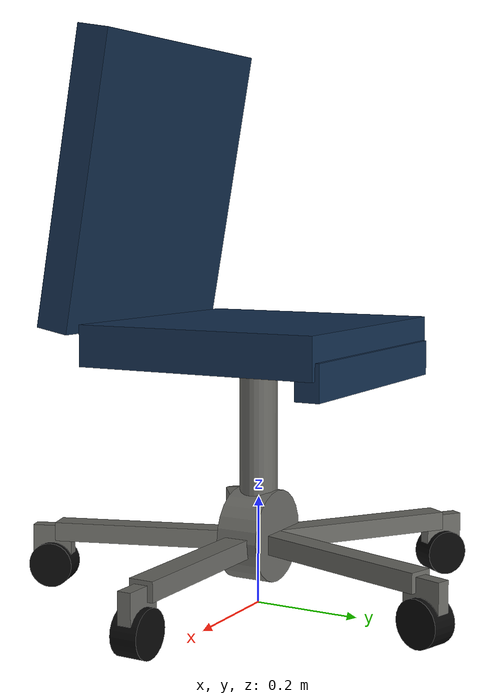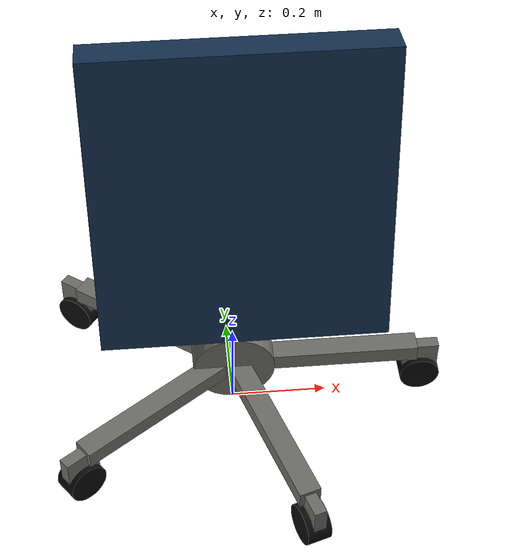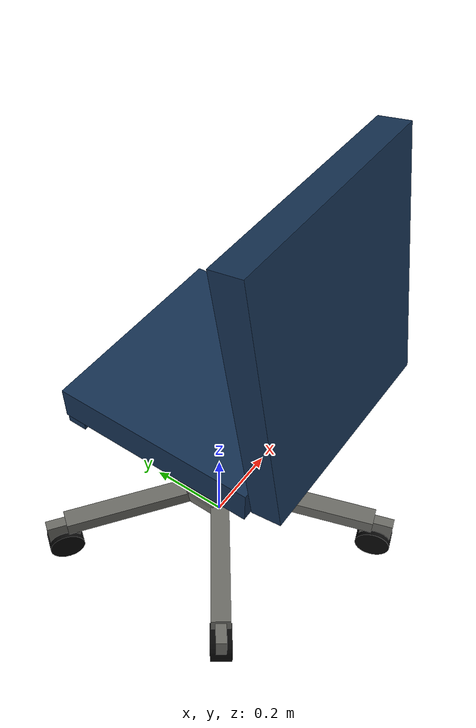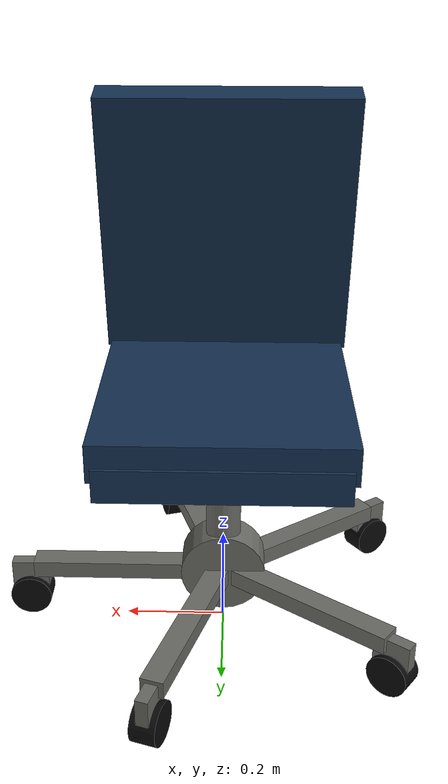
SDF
<?xml version="1.0"?>
<sdf version="1.9">
  <model name="rolling_chair">
    <static>true</static>
    <link name="seat">
      <pose>0 0 0.49 0 0 0</pose>
      <collision name="collision">
        <geometry><box><size>0.48 0.46 0.075</size></box></geometry>
      </collision>
      <visual name="visual">
        <geometry><box><size>0.48 0.46 0.075</size></box></geometry>
          <material>
            <ambient>0.08 0.19 0.32 1</ambient>
            <diffuse>0.08 0.19 0.32 1</diffuse>
          </material>
      </visual>
    </link>
    <link name="front_lip">
      <pose>0 0.215 0.45 0 0 0</pose>
      <collision name="collision">
        <geometry><box><size>0.46 0.045 0.065</size></box></geometry>
      </collision>
      <visual name="visual">
        <geometry><box><size>0.46 0.045 0.065</size></box></geometry>
          <material>
            <ambient>0.08 0.19 0.32 1</ambient>
            <diffuse>0.08 0.19 0.32 1</diffuse>
          </material>
      </visual>
    </link>
    <link name="backrest">
      <pose>0 -0.235 0.78 -0.18 0 0</pose>
      <collision name="collision">
        <geometry><box><size>0.50 0.065 0.54</size></box></geometry>
      </collision>
      <visual name="visual">
        <geometry><box><size>0.50 0.065 0.54</size></box></geometry>
          <material>
            <ambient>0.08 0.19 0.32 1</ambient>
            <diffuse>0.08 0.19 0.32 1</diffuse>
          </material>
      </visual>
    </link>
    <link name="gas_lift">
      <pose>0 0 0.30 0 0 0</pose>
      <collision name="collision">
        <geometry><cylinder><radius>0.035</radius><length>0.34</length></cylinder></geometry>
      </collision>
      <visual name="visual">
        <geometry><cylinder><radius>0.035</radius><length>0.34</length></cylinder></geometry>
          <material>
            <ambient>0.42 0.42 0.4 1</ambient>
            <diffuse>0.42 0.42 0.4 1</diffuse>
          </material>
      </visual>
    </link>
    <link name="base_hub">
      <pose>0 0 0.13 1.5708 0 0</pose>
      <collision name="collision">
        <geometry><cylinder><radius>0.085</radius><length>0.08</length></cylinder></geometry>
      </collision>
      <visual name="visual">
        <geometry><cylinder><radius>0.085</radius><length>0.08</length></cylinder></geometry>
          <material>
            <ambient>0.42 0.42 0.4 1</ambient>
            <diffuse>0.42 0.42 0.4 1</diffuse>
          </material>
      </visual>
    </link>
    <link name="base_spoke_1">
      <pose>0.2100 0.0000 0.12 0 0 0.0000</pose>
      <collision name="collision">
        <geometry><box><size>0.36 0.045 0.035</size></box></geometry>
      </collision>
      <visual name="visual">
        <geometry><box><size>0.36 0.045 0.035</size></box></geometry>
          <material>
            <ambient>0.42 0.42 0.4 1</ambient>
            <diffuse>0.42 0.42 0.4 1</diffuse>
          </material>
      </visual>
    </link>
    <link name="caster_wheel_1">
      <pose>0.4000 0.0000 0.055 1.5708 0 0.0000</pose>
      <collision name="collision">
        <geometry><cylinder><radius>0.042</radius><length>0.050</length></cylinder></geometry>
      </collision>
      <visual name="visual">
        <geometry><cylinder><radius>0.042</radius><length>0.050</length></cylinder></geometry>
          <material>
            <ambient>0.035 0.035 0.035 1</ambient>
            <diffuse>0.035 0.035 0.035 1</diffuse>
          </material>
      </visual>
    </link>
    <link name="caster_fork_1">
      <pose>0.4000 0.0000 0.102 0 0 0.0000</pose>
      <collision name="collision">
        <geometry><box><size>0.075 0.025 0.055</size></box></geometry>
      </collision>
      <visual name="visual">
        <geometry><box><size>0.075 0.025 0.055</size></box></geometry>
          <material>
            <ambient>0.42 0.42 0.4 1</ambient>
            <diffuse>0.42 0.42 0.4 1</diffuse>
          </material>
      </visual>
    </link>
    <link name="base_spoke_2">
      <pose>0.0649 0.1997 0.12 0 0 1.2566</pose>
      <collision name="collision">
        <geometry><box><size>0.36 0.045 0.035</size></box></geometry>
      </collision>
      <visual name="visual">
        <geometry><box><size>0.36 0.045 0.035</size></box></geometry>
          <material>
            <ambient>0.42 0.42 0.4 1</ambient>
            <diffuse>0.42 0.42 0.4 1</diffuse>
          </material>
      </visual>
    </link>
    <link name="caster_wheel_2">
      <pose>0.1236 0.3804 0.055 1.5708 0 1.2566</pose>
      <collision name="collision">
        <geometry><cylinder><radius>0.042</radius><length>0.050</length></cylinder></geometry>
      </collision>
      <visual name="visual">
        <geometry><cylinder><radius>0.042</radius><length>0.050</length></cylinder></geometry>
          <material>
            <ambient>0.035 0.035 0.035 1</ambient>
            <diffuse>0.035 0.035 0.035 1</diffuse>
          </material>
      </visual>
    </link>
    <link name="caster_fork_2">
      <pose>0.1236 0.3804 0.102 0 0 1.2566</pose>
      <collision name="collision">
        <geometry><box><size>0.075 0.025 0.055</size></box></geometry>
      </collision>
      <visual name="visual">
        <geometry><box><size>0.075 0.025 0.055</size></box></geometry>
          <material>
            <ambient>0.42 0.42 0.4 1</ambient>
            <diffuse>0.42 0.42 0.4 1</diffuse>
          </material>
      </visual>
    </link>
    <link name="base_spoke_3">
      <pose>-0.1699 0.1234 0.12 0 0 2.5133</pose>
      <collision name="collision">
        <geometry><box><size>0.36 0.045 0.035</size></box></geometry>
      </collision>
      <visual name="visual">
        <geometry><box><size>0.36 0.045 0.035</size></box></geometry>
          <material>
            <ambient>0.42 0.42 0.4 1</ambient>
            <diffuse>0.42 0.42 0.4 1</diffuse>
          </material>
      </visual>
    </link>
    <link name="caster_wheel_3">
      <pose>-0.3236 0.2351 0.055 1.5708 0 2.5133</pose>
      <collision name="collision">
        <geometry><cylinder><radius>0.042</radius><length>0.050</length></cylinder></geometry>
      </collision>
      <visual name="visual">
        <geometry><cylinder><radius>0.042</radius><length>0.050</length></cylinder></geometry>
          <material>
            <ambient>0.035 0.035 0.035 1</ambient>
            <diffuse>0.035 0.035 0.035 1</diffuse>
          </material>
      </visual>
    </link>
    <link name="caster_fork_3">
      <pose>-0.3236 0.2351 0.102 0 0 2.5133</pose>
      <collision name="collision">
        <geometry><box><size>0.075 0.025 0.055</size></box></geometry>
      </collision>
      <visual name="visual">
        <geometry><box><size>0.075 0.025 0.055</size></box></geometry>
          <material>
            <ambient>0.42 0.42 0.4 1</ambient>
            <diffuse>0.42 0.42 0.4 1</diffuse>
          </material>
      </visual>
    </link>
    <link name="base_spoke_4">
      <pose>-0.1699 -0.1234 0.12 0 0 3.7699</pose>
      <collision name="collision">
        <geometry><box><size>0.36 0.045 0.035</size></box></geometry>
      </collision>
      <visual name="visual">
        <geometry><box><size>0.36 0.045 0.035</size></box></geometry>
          <material>
            <ambient>0.42 0.42 0.4 1</ambient>
            <diffuse>0.42 0.42 0.4 1</diffuse>
          </material>
      </visual>
    </link>
    <link name="caster_wheel_4">
      <pose>-0.3236 -0.2351 0.055 1.5708 0 3.7699</pose>
      <collision name="collision">
        <geometry><cylinder><radius>0.042</radius><length>0.050</length></cylinder></geometry>
      </collision>
      <visual name="visual">
        <geometry><cylinder><radius>0.042</radius><length>0.050</length></cylinder></geometry>
          <material>
            <ambient>0.035 0.035 0.035 1</ambient>
            <diffuse>0.035 0.035 0.035 1</diffuse>
          </material>
      </visual>
    </link>
    <link name="caster_fork_4">
      <pose>-0.3236 -0.2351 0.102 0 0 3.7699</pose>
      <collision name="collision">
        <geometry><box><size>0.075 0.025 0.055</size></box></geometry>
      </collision>
      <visual name="visual">
        <geometry><box><size>0.075 0.025 0.055</size></box></geometry>
          <material>
            <ambient>0.42 0.42 0.4 1</ambient>
            <diffuse>0.42 0.42 0.4 1</diffuse>
          </material>
      </visual>
    </link>
    <link name="base_spoke_5">
      <pose>0.0649 -0.1997 0.12 0 0 5.0265</pose>
      <collision name="collision">
        <geometry><box><size>0.36 0.045 0.035</size></box></geometry>
      </collision>
      <visual name="visual">
        <geometry><box><size>0.36 0.045 0.035</size></box></geometry>
          <material>
            <ambient>0.42 0.42 0.4 1</ambient>
            <diffuse>0.42 0.42 0.4 1</diffuse>
          </material>
      </visual>
    </link>
    <link name="caster_wheel_5">
      <pose>0.1236 -0.3804 0.055 1.5708 0 5.0265</pose>
      <collision name="collision">
        <geometry><cylinder><radius>0.042</radius><length>0.050</length></cylinder></geometry>
      </collision>
      <visual name="visual">
        <geometry><cylinder><radius>0.042</radius><length>0.050</length></cylinder></geometry>
          <material>
            <ambient>0.035 0.035 0.035 1</ambient>
            <diffuse>0.035 0.035 0.035 1</diffuse>
          </material>
      </visual>
    </link>
    <link name="caster_fork_5">
      <pose>0.1236 -0.3804 0.102 0 0 5.0265</pose>
      <collision name="collision">
        <geometry><box><size>0.075 0.025 0.055</size></box></geometry>
      </collision>
      <visual name="visual">
        <geometry><box><size>0.075 0.025 0.055</size></box></geometry>
          <material>
            <ambient>0.42 0.42 0.4 1</ambient>
            <diffuse>0.42 0.42 0.4 1</diffuse>
          </material>
      </visual>
    </link>
  </model>
</sdf>
